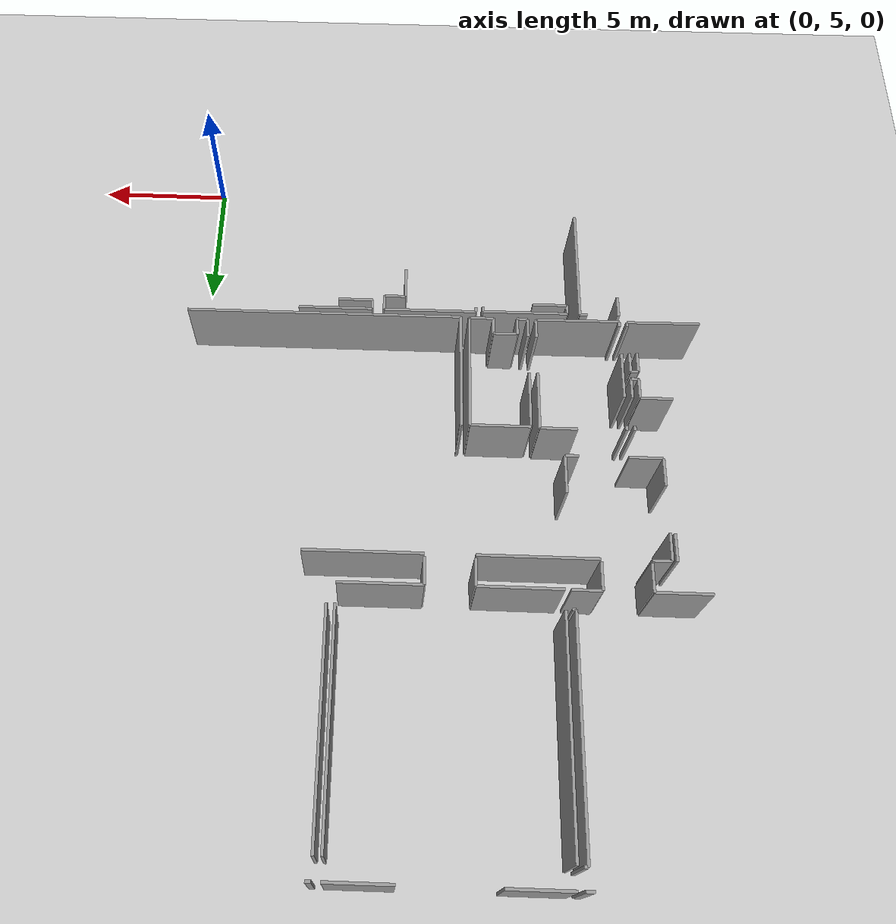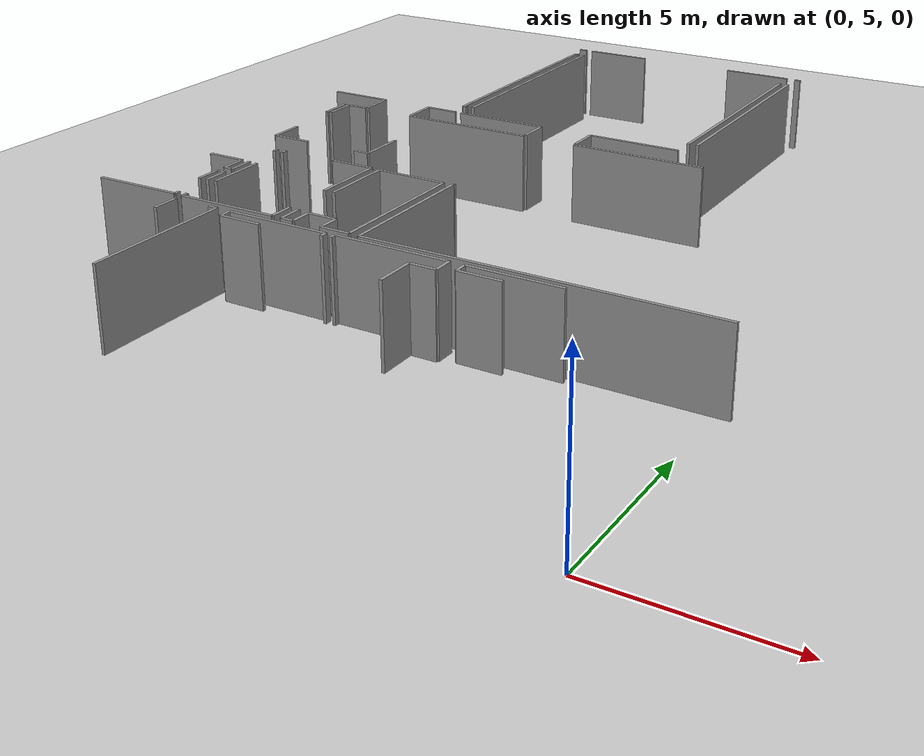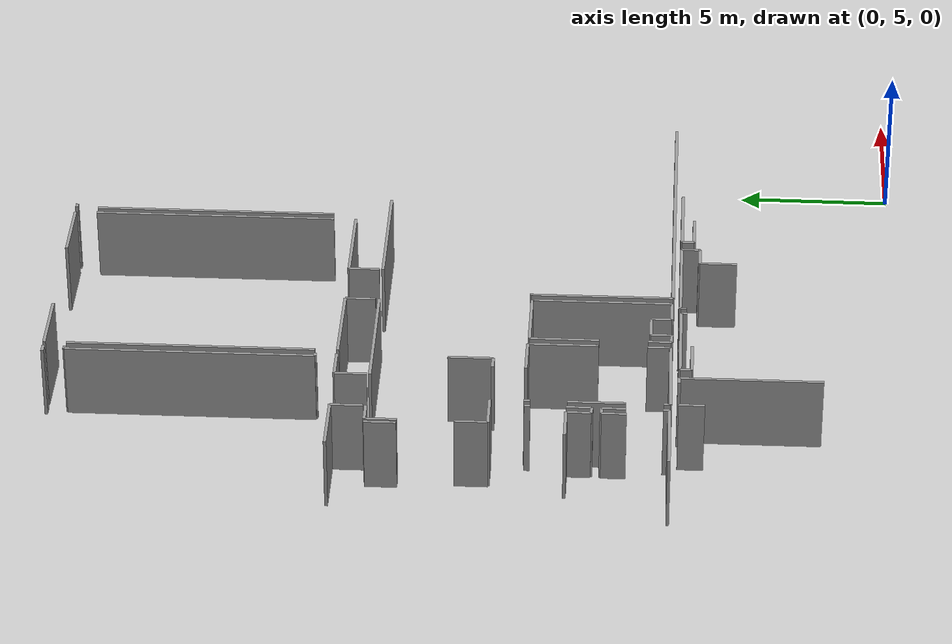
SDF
<sdf version="1.6">
 <world name="default">
  <model name="ground_plane">
   <static>1</static>
   <link name="link">
    <collision name="collision">
     <geometry><plane><normal>0 0 1</normal><size>100 100</size></plane></geometry>
     <surface><friction><ode><mu>100</mu><mu2>50</mu2></ode></friction></surface>
    </collision>
    <visual name="visual">
     <cast_shadows>0</cast_shadows>
     <geometry><plane><normal>0 0 1</normal><size>100 100</size></plane></geometry>
     <material>
      <script><uri>file://media/materials/scripts/gazebo.material</uri><name>Gazebo/Grey</name></script>
     </material>
    </visual>
   </link>
  </model>
  <model name="50052750">
   <static>1</static>
   <link name="Wall_37">
    <collision name="Wall_37_Collision">
     <geometry><box><size>1.02735593965 0.1 2.5</size></box></geometry>
     <pose>0.513677969826 0 1.25 0 0 0</pose>
    </collision>
    <visual name="Wall_37_Visual">
     <pose>0.513677969826 0 1.25 0 0 0</pose>
     <geometry><box><size>1.02735593965 0.1 2.5</size></box></geometry>
     <material>
      <script><uri>file://media/materials/scripts/gazebo.material</uri><name>Gazebo/Grey</name></script>
      <ambient>1 1 1 1</ambient>
     </material>
    </visual>
    <pose>25.2134662499 -10.5972990788 0 0 0 -1.57079632679</pose>
   </link>
   <link name="Wall_82">
    <collision name="Wall_82_Collision">
     <geometry><box><size>1.0690140863 0.1 2.5</size></box></geometry>
     <pose>0.534507043148 0 1.25 0 0 0</pose>
    </collision>
    <visual name="Wall_82_Visual">
     <pose>0.534507043148 0 1.25 0 0 0</pose>
     <geometry><box><size>1.0690140863 0.1 2.5</size></box></geometry>
     <material>
      <script><uri>file://media/materials/scripts/gazebo.material</uri><name>Gazebo/Grey</name></script>
      <ambient>1 1 1 1</ambient>
     </material>
    </visual>
    <pose>25.3809878823 -14.4886526003 0 0 0 1.57079632679</pose>
   </link>
   <link name="Wall_83">
    <collision name="Wall_83_Collision">
     <geometry><box><size>1.02481580876 0.1 2.5</size></box></geometry>
     <pose>0.512407904379 0 1.25 0 0 0</pose>
    </collision>
    <visual name="Wall_83_Visual">
     <pose>0.512407904379 0 1.25 0 0 0</pose>
     <geometry><box><size>1.02481580876 0.1 2.5</size></box></geometry>
     <material>
      <script><uri>file://media/materials/scripts/gazebo.material</uri><name>Gazebo/Grey</name></script>
      <ambient>1 1 1 1</ambient>
     </material>
    </visual>
    <pose>25.3809878823 -11.634815542 0 0 0 1.57079632679</pose>
   </link>
   <link name="Wall_84">
    <collision name="Wall_84_Collision">
     <geometry><box><size>0.698408989015 0.1 2.5</size></box></geometry>
     <pose>0.349204494508 0 1.25 0 0 0</pose>
    </collision>
    <visual name="Wall_84_Visual">
     <pose>0.349204494508 0 1.25 0 0 0</pose>
     <geometry><box><size>0.698408989015 0.1 2.5</size></box></geometry>
     <material>
      <script><uri>file://media/materials/scripts/gazebo.material</uri><name>Gazebo/Grey</name></script>
      <ambient>1 1 1 1</ambient>
     </material>
    </visual>
    <pose>25.3809878823 -10.6099997333 0 0 0 0.0</pose>
   </link>
   <link name="Wall_85">
    <collision name="Wall_85_Collision">
     <geometry><box><size>4.26297467108 0.1 2.5</size></box></geometry>
     <pose>2.13148733554 0 1.25 0 0 0</pose>
    </collision>
    <visual name="Wall_85_Visual">
     <pose>2.13148733554 0 1.25 0 0 0</pose>
     <geometry><box><size>4.26297467108 0.1 2.5</size></box></geometry>
     <material>
      <script><uri>file://media/materials/scripts/gazebo.material</uri><name>Gazebo/Grey</name></script>
      <ambient>1 1 1 1</ambient>
     </material>
    </visual>
    <pose>27.8116391338 -10.6099997333 0 0 0 0.0</pose>
   </link>
   <link name="Wall_86">
    <collision name="Wall_86_Collision">
     <geometry><box><size>4.24201859122 0.1 2.5</size></box></geometry>
     <pose>2.12100929561 0 1.25 0 0 0</pose>
    </collision>
    <visual name="Wall_86_Visual">
     <pose>2.12100929561 0 1.25 0 0 0</pose>
     <geometry><box><size>4.24201859122 0.1 2.5</size></box></geometry>
     <material>
      <script><uri>file://media/materials/scripts/gazebo.material</uri><name>Gazebo/Grey</name></script>
      <ambient>1 1 1 1</ambient>
     </material>
    </visual>
    <pose>33.8218428396 -10.6099997333 0 0 0 0.0</pose>
   </link>
   <link name="Wall_103">
    <collision name="Wall_103_Collision">
     <geometry><box><size>1.45968621763 0.1 2.5</size></box></geometry>
     <pose>0.729843108815 0 1.25 0 0 0</pose>
    </collision>
    <visual name="Wall_103_Visual">
     <pose>0.729843108815 0 1.25 0 0 0</pose>
     <geometry><box><size>1.45968621763 0.1 2.5</size></box></geometry>
     <material>
      <script><uri>file://media/materials/scripts/gazebo.material</uri><name>Gazebo/Grey</name></script>
      <ambient>1 1 1 1</ambient>
     </material>
    </visual>
    <pose>28.8713817423 -13.029982435 0 0 0 -1.57079632679</pose>
   </link>
   <link name="Wall_104">
    <collision name="Wall_104_Collision">
     <geometry><box><size>0.485165000552 0.1 2.5</size></box></geometry>
     <pose>0.242582500276 0 1.25 0 0 0</pose>
    </collision>
    <visual name="Wall_104_Visual">
     <pose>0.242582500276 0 1.25 0 0 0</pose>
     <geometry><box><size>0.485165000552 0.1 2.5</size></box></geometry>
     <material>
      <script><uri>file://media/materials/scripts/gazebo.material</uri><name>Gazebo/Grey</name></script>
      <ambient>1 1 1 1</ambient>
     </material>
    </visual>
    <pose>28.8713817423 -14.4896686526 0 0 0 3.14159265359</pose>
   </link>
   <link name="Wall_105">
    <collision name="Wall_105_Collision">
     <geometry><box><size>1.22751867452 0.1 2.5</size></box></geometry>
     <pose>0.613759337262 0 1.25 0 0 0</pose>
    </collision>
    <visual name="Wall_105_Visual">
     <pose>0.613759337262 0 1.25 0 0 0</pose>
     <geometry><box><size>1.22751867452 0.1 2.5</size></box></geometry>
     <material>
      <script><uri>file://media/materials/scripts/gazebo.material</uri><name>Gazebo/Grey</name></script>
      <ambient>1 1 1 1</ambient>
     </material>
    </visual>
    <pose>26.6085061363 -14.4896686526 0 0 0 3.14076492486</pose>
   </link>
   <link name="Wall_107">
    <collision name="Wall_107_Collision">
     <geometry><box><size>0.290463967608 0.1 2.5</size></box></geometry>
     <pose>0.145231983804 0 1.25 0 0 0</pose>
    </collision>
    <visual name="Wall_107_Visual">
     <pose>0.145231983804 0 1.25 0 0 0</pose>
     <geometry><box><size>0.290463967608 0.1 2.5</size></box></geometry>
     <material>
      <script><uri>file://media/materials/scripts/gazebo.material</uri><name>Gazebo/Grey</name></script>
      <ambient>1 1 1 1</ambient>
     </material>
    </visual>
    <pose>28.576091526 -0.0234962107597 0 0 0 0.0</pose>
   </link>
   <link name="Wall_108">
    <collision name="Wall_108_Collision">
     <geometry><box><size>0.123450361397 0.1 2.5</size></box></geometry>
     <pose>0.0617251806986 0 1.25 0 0 0</pose>
    </collision>
    <visual name="Wall_108_Visual">
     <pose>0.0617251806986 0 1.25 0 0 0</pose>
     <geometry><box><size>0.123450361397 0.1 2.5</size></box></geometry>
     <material>
      <script><uri>file://media/materials/scripts/gazebo.material</uri><name>Gazebo/Grey</name></script>
      <ambient>1 1 1 1</ambient>
     </material>
    </visual>
    <pose>28.8665554936 -0.713268754739 0 0 0 3.14159265359</pose>
   </link>
   <link name="Wall_109">
    <collision name="Wall_109_Collision">
     <geometry><box><size>8.07063087961 0.1 2.5</size></box></geometry>
     <pose>4.0353154398 0 1.25 0 0 0</pose>
    </collision>
    <visual name="Wall_109_Visual">
     <pose>4.0353154398 0 1.25 0 0 0</pose>
     <geometry><box><size>8.07063087961 0.1 2.5</size></box></geometry>
     <material>
      <script><uri>file://media/materials/scripts/gazebo.material</uri><name>Gazebo/Grey</name></script>
      <ambient>1 1 1 1</ambient>
     </material>
    </visual>
    <pose>28.7431051322 -0.713268754739 0 0 0 -1.57079632679</pose>
   </link>
   <link name="Wall_110">
    <collision name="Wall_110_Collision">
     <geometry><box><size>0.123704374486 0.1 2.5</size></box></geometry>
     <pose>0.0618521872432 0 1.25 0 0 0</pose>
    </collision>
    <visual name="Wall_110_Visual">
     <pose>0.0618521872432 0 1.25 0 0 0</pose>
     <geometry><box><size>0.123704374486 0.1 2.5</size></box></geometry>
     <material>
      <script><uri>file://media/materials/scripts/gazebo.material</uri><name>Gazebo/Grey</name></script>
      <ambient>1 1 1 1</ambient>
     </material>
    </visual>
    <pose>28.7431051322 -8.78389963435 0 0 0 0.0</pose>
   </link>
   <link name="Wall_111">
    <collision name="Wall_111_Collision">
     <geometry><box><size>1.05834553655 0.1 2.5</size></box></geometry>
     <pose>0.529172768273 0 1.25 0 0 0</pose>
    </collision>
    <visual name="Wall_111_Visual">
     <pose>0.529172768273 0 1.25 0 0 0</pose>
     <geometry><box><size>1.05834553655 0.1 2.5</size></box></geometry>
     <material>
      <script><uri>file://media/materials/scripts/gazebo.material</uri><name>Gazebo/Grey</name></script>
      <ambient>1 1 1 1</ambient>
     </material>
    </visual>
    <pose>28.8668095067 -9.47722836158 0 0 0 3.14159265359</pose>
   </link>
   <link name="Wall_112">
    <collision name="Wall_112_Collision">
     <geometry><box><size>1.04323175773 0.1 2.5</size></box></geometry>
     <pose>0.521615878866 0 1.25 0 0 0</pose>
    </collision>
    <visual name="Wall_112_Visual">
     <pose>0.521615878866 0 1.25 0 0 0</pose>
     <geometry><box><size>1.04323175773 0.1 2.5</size></box></geometry>
     <material>
      <script><uri>file://media/materials/scripts/gazebo.material</uri><name>Gazebo/Grey</name></script>
      <ambient>1 1 1 1</ambient>
     </material>
    </visual>
    <pose>27.8084639701 -9.47722836158 0 0 0 -1.57079632679</pose>
   </link>
   <link name="Wall_113">
    <collision name="Wall_113_Collision">
     <geometry><box><size>1.04653392789 0.1 2.5</size></box></geometry>
     <pose>0.523266963947 0 1.25 0 0 0</pose>
    </collision>
    <visual name="Wall_113_Visual">
     <pose>0.523266963947 0 1.25 0 0 0</pose>
     <geometry><box><size>1.04653392789 0.1 2.5</size></box></geometry>
     <material>
      <script><uri>file://media/materials/scripts/gazebo.material</uri><name>Gazebo/Grey</name></script>
      <ambient>1 1 1 1</ambient>
     </material>
    </visual>
    <pose>26.0830800611 -10.5204601193 0 0 0 1.57079632679</pose>
   </link>
   <link name="Wall_114">
    <collision name="Wall_114_Collision">
     <geometry><box><size>1.99908301275 0.1 2.5</size></box></geometry>
     <pose>0.999541506374 0 1.25 0 0 0</pose>
    </collision>
    <visual name="Wall_114_Visual">
     <pose>0.999541506374 0 1.25 0 0 0</pose>
     <geometry><box><size>1.99908301275 0.1 2.5</size></box></geometry>
     <material>
      <script><uri>file://media/materials/scripts/gazebo.material</uri><name>Gazebo/Grey</name></script>
      <ambient>1 1 1 1</ambient>
     </material>
    </visual>
    <pose>26.0830800611 -9.47392619142 0 0 0 3.14159265359</pose>
   </link>
   <link name="Wall_117">
    <collision name="Wall_117_Collision">
     <geometry><box><size>8.02516253663 0.1 2.5</size></box></geometry>
     <pose>4.01258126831 0 1.25 0 0 0</pose>
    </collision>
    <visual name="Wall_117_Visual">
     <pose>4.01258126831 0 1.25 0 0 0</pose>
     <geometry><box><size>8.02516253663 0.1 2.5</size></box></geometry>
     <material>
      <script><uri>file://media/materials/scripts/gazebo.material</uri><name>Gazebo/Grey</name></script>
      <ambient>1 1 1 1</ambient>
     </material>
    </visual>
    <pose>29.0827206326 -8.76103845631 0 0 0 1.57079632679</pose>
   </link>
   <link name="Wall_118">
    <collision name="Wall_118_Collision">
     <geometry><box><size>2.20140443837 0.1 2.5</size></box></geometry>
     <pose>1.10070221919 0 1.25 0 0 0</pose>
    </collision>
    <visual name="Wall_118_Visual">
     <pose>1.10070221919 0 1.25 0 0 0</pose>
     <geometry><box><size>2.20140443837 0.1 2.5</size></box></geometry>
     <material>
      <script><uri>file://media/materials/scripts/gazebo.material</uri><name>Gazebo/Grey</name></script>
      <ambient>1 1 1 1</ambient>
     </material>
    </visual>
    <pose>29.0827206326 -0.017653909706 0 0 0 0.0</pose>
   </link>
   <link name="Wall_119">
    <collision name="Wall_119_Collision">
     <geometry><box><size>2.23887136904 0.1 2.5</size></box></geometry>
     <pose>1.11943568452 0 1.25 0 0 0</pose>
    </collision>
    <visual name="Wall_119_Visual">
     <pose>1.11943568452 0 1.25 0 0 0</pose>
     <geometry><box><size>2.23887136904 0.1 2.5</size></box></geometry>
     <material>
      <script><uri>file://media/materials/scripts/gazebo.material</uri><name>Gazebo/Grey</name></script>
      <ambient>1 1 1 1</ambient>
     </material>
    </visual>
    <pose>34.5580997789 -0.017653909706 0 0 0 0.0</pose>
   </link>
   <link name="Wall_120">
    <collision name="Wall_120_Collision">
     <geometry><box><size>8.00585754184 0.1 2.5</size></box></geometry>
     <pose>4.00292877092 0 1.25 0 0 0</pose>
    </collision>
    <visual name="Wall_120_Visual">
     <pose>4.00292877092 0 1.25 0 0 0</pose>
     <geometry><box><size>8.00585754184 0.1 2.5</size></box></geometry>
     <material>
      <script><uri>file://media/materials/scripts/gazebo.material</uri><name>Gazebo/Grey</name></script>
      <ambient>1 1 1 1</ambient>
     </material>
    </visual>
    <pose>36.7969711479 -0.746798482526 0 0 0 -1.57079632679</pose>
   </link>
   <link name="Wall_121">
    <collision name="Wall_121_Collision">
     <geometry><box><size>2.9766523869 0.1 2.5</size></box></geometry>
     <pose>1.48832619345 0 1.25 0 0 0</pose>
    </collision>
    <visual name="Wall_121_Visual">
     <pose>1.48832619345 0 1.25 0 0 0</pose>
     <geometry><box><size>2.9766523869 0.1 2.5</size></box></geometry>
     <material>
      <script><uri>file://media/materials/scripts/gazebo.material</uri><name>Gazebo/Grey</name></script>
      <ambient>1 1 1 1</ambient>
     </material>
    </visual>
    <pose>36.7969711479 -9.48815092442 0 0 0 3.14159265359</pose>
   </link>
   <link name="Wall_122">
    <collision name="Wall_122_Collision">
     <geometry><box><size>1.00716189905 0.1 2.5</size></box></geometry>
     <pose>0.503580949526 0 1.25 0 0 0</pose>
    </collision>
    <visual name="Wall_122_Visual">
     <pose>0.503580949526 0 1.25 0 0 0</pose>
     <geometry><box><size>1.00716189905 0.1 2.5</size></box></geometry>
     <material>
      <script><uri>file://media/materials/scripts/gazebo.material</uri><name>Gazebo/Grey</name></script>
      <ambient>1 1 1 1</ambient>
     </material>
    </visual>
    <pose>33.820318761 -9.48815092442 0 0 0 -1.57079632679</pose>
   </link>
   <link name="Wall_123">
    <collision name="Wall_123_Collision">
     <geometry><box><size>0.996112329668 0.1 2.5</size></box></geometry>
     <pose>0.498056164834 0 1.25 0 0 0</pose>
    </collision>
    <visual name="Wall_123_Visual">
     <pose>0.498056164834 0 1.25 0 0 0</pose>
     <geometry><box><size>0.996112329668 0.1 2.5</size></box></geometry>
     <material>
      <script><uri>file://media/materials/scripts/gazebo.material</uri><name>Gazebo/Grey</name></script>
      <ambient>1 1 1 1</ambient>
     </material>
    </visual>
    <pose>32.0690255169 -10.4953128235 0 0 0 1.57079632679</pose>
   </link>
   <link name="Wall_124">
    <collision name="Wall_124_Collision">
     <geometry><box><size>2.986332983 0.1 2.5</size></box></geometry>
     <pose>1.4931664915 0 1.25 0 0 0</pose>
    </collision>
    <visual name="Wall_124_Visual">
     <pose>1.4931664915 0 1.25 0 0 0</pose>
     <geometry><box><size>2.986332983 0.1 2.5</size></box></geometry>
     <material>
      <script><uri>file://media/materials/scripts/gazebo.material</uri><name>Gazebo/Grey</name></script>
      <ambient>1 1 1 1</ambient>
     </material>
    </visual>
    <pose>32.0690255169 -9.4992004938 0 0 0 3.13725465503</pose>
   </link>
   <link name="Wall_125">
    <collision name="Wall_125_Collision">
     <geometry><box><size>7.98604452087 0.1 2.5</size></box></geometry>
     <pose>3.99302226044 0 1.25 0 0 0</pose>
    </collision>
    <visual name="Wall_125_Visual">
     <pose>3.99302226044 0 1.25 0 0 0</pose>
     <geometry><box><size>7.98604452087 0.1 2.5</size></box></geometry>
     <material>
      <script><uri>file://media/materials/scripts/gazebo.material</uri><name>Gazebo/Grey</name></script>
      <ambient>1 1 1 1</ambient>
     </material>
    </visual>
    <pose>37.0868000828 -8.73017586596 0 0 0 1.57079632679</pose>
   </link>
   <link name="Wall_126">
    <collision name="Wall_126_Collision">
     <geometry><box><size>0.200797347087 0.1 2.5</size></box></geometry>
     <pose>0.100398673544 0 1.25 0 0 0</pose>
    </collision>
    <visual name="Wall_126_Visual">
     <pose>0.100398673544 0 1.25 0 0 0</pose>
     <geometry><box><size>0.200797347087 0.1 2.5</size></box></geometry>
     <material>
      <script><uri>file://media/materials/scripts/gazebo.material</uri><name>Gazebo/Grey</name></script>
      <ambient>1 1 1 1</ambient>
     </material>
    </visual>
    <pose>37.0868000828 -0.0260363416527 0 0 0 0.0</pose>
   </link>
   <link name="Wall_272">
    <collision name="Wall_272_Collision">
     <geometry><box><size>10.3759266715 0.1 2.5</size></box></geometry>
     <pose>5.18796333575 0 1.25 0 0 0</pose>
    </collision>
    <visual name="Wall_272_Visual">
     <pose>5.18796333575 0 1.25 0 0 0</pose>
     <geometry><box><size>10.3759266715 0.1 2.5</size></box></geometry>
     <material>
      <script><uri>file://media/materials/scripts/gazebo.material</uri><name>Gazebo/Grey</name></script>
      <ambient>1 1 1 1</ambient>
     </material>
    </visual>
    <pose>32.5826399834 -20.1884523109 0 0 0 0.0</pose>
   </link>
   <link name="Wall_276">
    <collision name="Wall_276_Collision">
     <geometry><box><size>0.0647733377701 0.1 2.5</size></box></geometry>
     <pose>0.032386668885 0 1.25 0 0 0</pose>
    </collision>
    <visual name="Wall_276_Visual">
     <pose>0.032386668885 0 1.25 0 0 0</pose>
     <geometry><box><size>0.0647733377701 0.1 2.5</size></box></geometry>
     <material>
      <script><uri>file://media/materials/scripts/gazebo.material</uri><name>Gazebo/Grey</name></script>
      <ambient>1 1 1 1</ambient>
     </material>
    </visual>
    <pose>32.6264572413 -15.5669381643 0 0 0 3.14159265359</pose>
   </link>
   <link name="Wall_277">
    <collision name="Wall_277_Collision">
     <geometry><box><size>4.62156165865 0.1 2.5</size></box></geometry>
     <pose>2.31078082933 0 1.25 0 0 0</pose>
    </collision>
    <visual name="Wall_277_Visual">
     <pose>2.31078082933 0 1.25 0 0 0</pose>
     <geometry><box><size>4.62156165865 0.1 2.5</size></box></geometry>
     <material>
      <script><uri>file://media/materials/scripts/gazebo.material</uri><name>Gazebo/Grey</name></script>
      <ambient>1 1 1 1</ambient>
     </material>
    </visual>
    <pose>32.5616839036 -15.5669381643 0 0 0 -1.56626189596</pose>
   </link>
   <link name="Wall_278">
    <collision name="Wall_278_Collision">
     <geometry><box><size>0.210576851025 0.1 2.5</size></box></geometry>
     <pose>0.105288425513 0 1.25 0 0 0</pose>
    </collision>
    <visual name="Wall_278_Visual">
     <pose>0.105288425513 0 1.25 0 0 0</pose>
     <geometry><box><size>0.210576851025 0.1 2.5</size></box></geometry>
     <material>
      <script><uri>file://media/materials/scripts/gazebo.material</uri><name>Gazebo/Grey</name></script>
      <ambient>1 1 1 1</ambient>
     </material>
    </visual>
    <pose>26.6010127502 -20.1817209641 0 0 0 1.57079632679</pose>
   </link>
   <link name="Wall_279">
    <collision name="Wall_279_Collision">
     <geometry><box><size>1.84451604791 0.1 2.5</size></box></geometry>
     <pose>0.922258023956 0 1.25 0 0 0</pose>
    </collision>
    <visual name="Wall_279_Visual">
     <pose>0.922258023956 0 1.25 0 0 0</pose>
     <geometry><box><size>1.84451604791 0.1 2.5</size></box></geometry>
     <material>
      <script><uri>file://media/materials/scripts/gazebo.material</uri><name>Gazebo/Grey</name></script>
      <ambient>1 1 1 1</ambient>
     </material>
    </visual>
    <pose>26.6010127502 -18.7803307504 0 0 0 1.57079632679</pose>
   </link>
   <link name="Wall_280">
    <collision name="Wall_280_Collision">
     <geometry><box><size>0.201178366721 0.1 2.5</size></box></geometry>
     <pose>0.100589183361 0 1.25 0 0 0</pose>
    </collision>
    <visual name="Wall_280_Visual">
     <pose>0.100589183361 0 1.25 0 0 0</pose>
     <geometry><box><size>0.201178366721 0.1 2.5</size></box></geometry>
     <material>
      <script><uri>file://media/materials/scripts/gazebo.material</uri><name>Gazebo/Grey</name></script>
      <ambient>1 1 1 1</ambient>
     </material>
    </visual>
    <pose>26.6010127502 -15.7598611056 0 0 0 1.57079632679</pose>
   </link>
   <link name="Wall_281">
    <collision name="Wall_281_Collision">
     <geometry><box><size>1.36951157093 0.1 2.5</size></box></geometry>
     <pose>0.684755785466 0 1.25 0 0 0</pose>
    </collision>
    <visual name="Wall_281_Visual">
     <pose>0.684755785466 0 1.25 0 0 0</pose>
     <geometry><box><size>1.36951157093 0.1 2.5</size></box></geometry>
     <material>
      <script><uri>file://media/materials/scripts/gazebo.material</uri><name>Gazebo/Grey</name></script>
      <ambient>1 1 1 1</ambient>
     </material>
    </visual>
    <pose>28.3695788844 -15.5586827389 0 0 0 0.0</pose>
   </link>
   <link name="Wall_282">
    <collision name="Wall_282_Collision">
     <geometry><box><size>2.2848477382 0.1 2.5</size></box></geometry>
     <pose>1.1424238691 0 1.25 0 0 0</pose>
    </collision>
    <visual name="Wall_282_Visual">
     <pose>1.1424238691 0 1.25 0 0 0</pose>
     <geometry><box><size>2.2848477382 0.1 2.5</size></box></geometry>
     <material>
      <script><uri>file://media/materials/scripts/gazebo.material</uri><name>Gazebo/Grey</name></script>
      <ambient>1 1 1 1</ambient>
     </material>
    </visual>
    <pose>29.7390904553 -15.5586827389 0 0 0 -1.57079632679</pose>
   </link>
   <link name="Wall_283">
    <collision name="Wall_283_Collision">
     <geometry><box><size>0.75784805191 0.1 2.5</size></box></geometry>
     <pose>0.378924025955 0 1.25 0 0 0</pose>
    </collision>
    <visual name="Wall_283_Visual">
     <pose>0.378924025955 0 1.25 0 0 0</pose>
     <geometry><box><size>0.75784805191 0.1 2.5</size></box></geometry>
     <material>
      <script><uri>file://media/materials/scripts/gazebo.material</uri><name>Gazebo/Grey</name></script>
      <ambient>1 1 1 1</ambient>
     </material>
    </visual>
    <pose>29.7390904553 -19.399106636 0 0 0 -1.57079632679</pose>
   </link>
   <link name="Wall_284">
    <collision name="Wall_284_Collision">
     <geometry><box><size>3.13817543359 0.1 2.5</size></box></geometry>
     <pose>1.56908771679 0 1.25 0 0 0</pose>
    </collision>
    <visual name="Wall_284_Visual">
     <pose>1.56908771679 0 1.25 0 0 0</pose>
     <geometry><box><size>3.13817543359 0.1 2.5</size></box></geometry>
     <material>
      <script><uri>file://media/materials/scripts/gazebo.material</uri><name>Gazebo/Grey</name></script>
      <ambient>1 1 1 1</ambient>
     </material>
    </visual>
    <pose>29.7390904553 -20.1569546879 0 0 0 -3.13370063677</pose>
   </link>
   <link name="Wall_285">
    <collision name="Wall_285_Collision">
     <geometry><box><size>0.749084600329 0.1 2.5</size></box></geometry>
     <pose>0.374542300165 0 1.25 0 0 0</pose>
    </collision>
    <visual name="Wall_285_Visual">
     <pose>0.374542300165 0 1.25 0 0 0</pose>
     <geometry><box><size>0.749084600329 0.1 2.5</size></box></geometry>
     <material>
      <script><uri>file://media/materials/scripts/gazebo.material</uri><name>Gazebo/Grey</name></script>
      <ambient>1 1 1 1</ambient>
     </material>
    </visual>
    <pose>30.0526696141 -20.1654641264 0 0 0 1.57079632679</pose>
   </link>
   <link name="Wall_286">
    <collision name="Wall_286_Collision">
     <geometry><box><size>2.24153850648 0.1 2.5</size></box></geometry>
     <pose>1.12076925324 0 1.25 0 0 0</pose>
    </collision>
    <visual name="Wall_286_Visual">
     <pose>1.12076925324 0 1.25 0 0 0</pose>
     <geometry><box><size>2.24153850648 0.1 2.5</size></box></geometry>
     <material>
      <script><uri>file://media/materials/scripts/gazebo.material</uri><name>Gazebo/Grey</name></script>
      <ambient>1 1 1 1</ambient>
     </material>
    </visual>
    <pose>30.0526696141 -17.8399742939 0 0 0 1.57079632679</pose>
   </link>
   <link name="Wall_287">
    <collision name="Wall_287_Collision">
     <geometry><box><size>2.20229348418 0.1 2.5</size></box></geometry>
     <pose>1.10114674209 0 1.25 0 0 0</pose>
    </collision>
    <visual name="Wall_287_Visual">
     <pose>1.10114674209 0 1.25 0 0 0</pose>
     <geometry><box><size>2.20229348418 0.1 2.5</size></box></geometry>
     <material>
      <script><uri>file://media/materials/scripts/gazebo.material</uri><name>Gazebo/Grey</name></script>
      <ambient>1 1 1 1</ambient>
     </material>
    </visual>
    <pose>30.0526696141 -15.5984357874 0 0 0 0.0</pose>
   </link>
   <link name="Wall_288">
    <collision name="Wall_288_Collision">
     <geometry><box><size>4.56702833897 0.1 2.5</size></box></geometry>
     <pose>2.28351416949 0 1.25 0 0 0</pose>
    </collision>
    <visual name="Wall_288_Visual">
     <pose>2.28351416949 0 1.25 0 0 0</pose>
     <geometry><box><size>4.56702833897 0.1 2.5</size></box></geometry>
     <material>
      <script><uri>file://media/materials/scripts/gazebo.material</uri><name>Gazebo/Grey</name></script>
      <ambient>1 1 1 1</ambient>
     </material>
    </visual>
    <pose>32.2549630982 -15.5984357874 0 0 0 -1.57079632679</pose>
   </link>
   <link name="Wall_289">
    <collision name="Wall_289_Collision">
     <geometry><box><size>0.905810676424 0.1 2.5</size></box></geometry>
     <pose>0.452905338212 0 1.25 0 0 0</pose>
    </collision>
    <visual name="Wall_289_Visual">
     <pose>0.452905338212 0 1.25 0 0 0</pose>
     <geometry><box><size>0.905810676424 0.1 2.5</size></box></geometry>
     <material>
      <script><uri>file://media/materials/scripts/gazebo.material</uri><name>Gazebo/Grey</name></script>
      <ambient>1 1 1 1</ambient>
     </material>
    </visual>
    <pose>32.2549630982 -20.1654641264 0 0 0 3.14159265359</pose>
   </link>
   <link name="Wall_290">
    <collision name="Wall_290_Collision">
     <geometry><box><size>0.662720149969 0.1 2.5</size></box></geometry>
     <pose>0.331360074985 0 1.25 0 0 0</pose>
    </collision>
    <visual name="Wall_290_Visual">
     <pose>0.331360074985 0 1.25 0 0 0</pose>
     <geometry><box><size>0.662720149969 0.1 2.5</size></box></geometry>
     <material>
      <script><uri>file://media/materials/scripts/gazebo.material</uri><name>Gazebo/Grey</name></script>
      <ambient>1 1 1 1</ambient>
     </material>
    </visual>
    <pose>31.3491524218 -20.1654641264 0 0 0 1.57079632679</pose>
   </link>
   <link name="Wall_291">
    <collision name="Wall_291_Collision">
     <geometry><box><size>0.902762519353 0.1 2.5</size></box></geometry>
     <pose>0.451381259676 0 1.25 0 0 0</pose>
    </collision>
    <visual name="Wall_291_Visual">
     <pose>0.451381259676 0 1.25 0 0 0</pose>
     <geometry><box><size>0.902762519353 0.1 2.5</size></box></geometry>
     <material>
      <script><uri>file://media/materials/scripts/gazebo.material</uri><name>Gazebo/Grey</name></script>
      <ambient>1 1 1 1</ambient>
     </material>
    </visual>
    <pose>31.3491524218 -19.5027439764 0 0 0 3.14159265359</pose>
   </link>
   <link name="Wall_292">
    <collision name="Wall_292_Collision">
     <geometry><box><size>0.672245640818 0.1 2.5</size></box></geometry>
     <pose>0.336122820409 0 1.25 0 0 0</pose>
    </collision>
    <visual name="Wall_292_Visual">
     <pose>0.336122820409 0 1.25 0 0 0</pose>
     <geometry><box><size>0.672245640818 0.1 2.5</size></box></geometry>
     <material>
      <script><uri>file://media/materials/scripts/gazebo.material</uri><name>Gazebo/Grey</name></script>
      <ambient>1 1 1 1</ambient>
     </material>
    </visual>
    <pose>30.4463899025 -19.5027439764 0 0 0 -1.57079632679</pose>
   </link>
   <link name="Wall_293">
    <collision name="Wall_293_Collision">
     <geometry><box><size>0.393835499262 0.1 2.5</size></box></geometry>
     <pose>0.196917749631 0 1.25 0 0 0</pose>
    </collision>
    <visual name="Wall_293_Visual">
     <pose>0.196917749631 0 1.25 0 0 0</pose>
     <geometry><box><size>0.393835499262 0.1 2.5</size></box></geometry>
     <material>
      <script><uri>file://media/materials/scripts/gazebo.material</uri><name>Gazebo/Grey</name></script>
      <ambient>1 1 1 1</ambient>
     </material>
    </visual>
    <pose>30.4463899025 -20.1749896172 0 0 0 3.11740382393</pose>
   </link>
   <link name="Wall_300">
    <collision name="Wall_300_Collision">
     <geometry><box><size>0.186572614087 0.1 2.5</size></box></geometry>
     <pose>0.0932863070434 0 1.25 0 0 0</pose>
    </collision>
    <visual name="Wall_300_Visual">
     <pose>0.0932863070434 0 1.25 0 0 0</pose>
     <geometry><box><size>0.186572614087 0.1 2.5</size></box></geometry>
     <material>
      <script><uri>file://media/materials/scripts/gazebo.material</uri><name>Gazebo/Grey</name></script>
      <ambient>1 1 1 1</ambient>
     </material>
    </visual>
    <pose>26.3124538807 -15.5830679955 0 0 0 -1.57079632679</pose>
   </link>
   <link name="Wall_301">
    <collision name="Wall_301_Collision">
     <geometry><box><size>0.79747409384 0.1 2.5</size></box></geometry>
     <pose>0.39873704692 0 1.25 0 0 0</pose>
    </collision>
    <visual name="Wall_301_Visual">
     <pose>0.39873704692 0 1.25 0 0 0</pose>
     <geometry><box><size>0.79747409384 0.1 2.5</size></box></geometry>
     <material>
      <script><uri>file://media/materials/scripts/gazebo.material</uri><name>Gazebo/Grey</name></script>
      <ambient>1 1 1 1</ambient>
     </material>
    </visual>
    <pose>26.3124538807 -16.9105404001 0 0 0 -1.57079632679</pose>
   </link>
   <link name="Wall_302">
    <collision name="Wall_302_Collision">
     <geometry><box><size>0.277509300054 0.1 2.5</size></box></geometry>
     <pose>0.138754650027 0 1.25 0 0 0</pose>
    </collision>
    <visual name="Wall_302_Visual">
     <pose>0.138754650027 0 1.25 0 0 0</pose>
     <geometry><box><size>0.277509300054 0.1 2.5</size></box></geometry>
     <material>
      <script><uri>file://media/materials/scripts/gazebo.material</uri><name>Gazebo/Grey</name></script>
      <ambient>1 1 1 1</ambient>
     </material>
    </visual>
    <pose>26.3124538807 -17.708014494 0 0 0 3.14159265359</pose>
   </link>
   <link name="Wall_303">
    <collision name="Wall_303_Collision">
     <geometry><box><size>0.796204028394 0.1 2.5</size></box></geometry>
     <pose>0.398102014197 0 1.25 0 0 0</pose>
    </collision>
    <visual name="Wall_303_Visual">
     <pose>0.398102014197 0 1.25 0 0 0</pose>
     <geometry><box><size>0.796204028394 0.1 2.5</size></box></geometry>
     <material>
      <script><uri>file://media/materials/scripts/gazebo.material</uri><name>Gazebo/Grey</name></script>
      <ambient>1 1 1 1</ambient>
     </material>
    </visual>
    <pose>26.0349445807 -17.708014494 0 0 0 1.57079632679</pose>
   </link>
   <link name="Wall_304">
    <collision name="Wall_304_Collision">
     <geometry><box><size>1.1970366833 0.1 2.5</size></box></geometry>
     <pose>0.59851834165 0 1.25 0 0 0</pose>
    </collision>
    <visual name="Wall_304_Visual">
     <pose>0.59851834165 0 1.25 0 0 0</pose>
     <geometry><box><size>1.1970366833 0.1 2.5</size></box></geometry>
     <material>
      <script><uri>file://media/materials/scripts/gazebo.material</uri><name>Gazebo/Grey</name></script>
      <ambient>1 1 1 1</ambient>
     </material>
    </visual>
    <pose>26.0349445807 -16.9118104656 0 0 0 3.14159265359</pose>
   </link>
   <link name="Wall_315">
    <collision name="Wall_315_Collision">
     <geometry><box><size>0.793028864777 0.1 2.5</size></box></geometry>
     <pose>0.396514432389 0 1.25 0 0 0</pose>
    </collision>
    <visual name="Wall_315_Visual">
     <pose>0.396514432389 0 1.25 0 0 0</pose>
     <geometry><box><size>0.793028864777 0.1 2.5</size></box></geometry>
     <material>
      <script><uri>file://media/materials/scripts/gazebo.material</uri><name>Gazebo/Grey</name></script>
      <ambient>1 1 1 1</ambient>
     </material>
    </visual>
    <pose>26.023132972 -18.8156385699 0 0 0 1.57079632679</pose>
   </link>
   <link name="Wall_316">
    <collision name="Wall_316_Collision">
     <geometry><box><size>0.278144332777 0.1 2.5</size></box></geometry>
     <pose>0.139072166389 0 1.25 0 0 0</pose>
    </collision>
    <visual name="Wall_316_Visual">
     <pose>0.139072166389 0 1.25 0 0 0</pose>
     <geometry><box><size>0.278144332777 0.1 2.5</size></box></geometry>
     <material>
      <script><uri>file://media/materials/scripts/gazebo.material</uri><name>Gazebo/Grey</name></script>
      <ambient>1 1 1 1</ambient>
     </material>
    </visual>
    <pose>26.023132972 -18.0226097051 0 0 0 0.0</pose>
   </link>
   <link name="Wall_317">
    <collision name="Wall_317_Collision">
     <geometry><box><size>0.772326798 0.1 2.5</size></box></geometry>
     <pose>0.386163399 0 1.25 0 0 0</pose>
    </collision>
    <visual name="Wall_317_Visual">
     <pose>0.386163399 0 1.25 0 0 0</pose>
     <geometry><box><size>0.772326798 0.1 2.5</size></box></geometry>
     <material>
      <script><uri>file://media/materials/scripts/gazebo.material</uri><name>Gazebo/Grey</name></script>
      <ambient>1 1 1 1</ambient>
     </material>
    </visual>
    <pose>26.3012773048 -18.0226097051 0 0 0 -1.57079632679</pose>
   </link>
   <link name="Wall_318">
    <collision name="Wall_318_Collision">
     <geometry><box><size>0.187842679533 0.1 2.5</size></box></geometry>
     <pose>0.0939213397666 0 1.25 0 0 0</pose>
    </collision>
    <visual name="Wall_318_Visual">
     <pose>0.0939213397666 0 1.25 0 0 0</pose>
     <geometry><box><size>0.187842679533 0.1 2.5</size></box></geometry>
     <material>
      <script><uri>file://media/materials/scripts/gazebo.material</uri><name>Gazebo/Grey</name></script>
      <ambient>1 1 1 1</ambient>
     </material>
    </visual>
    <pose>26.3012773048 -19.9647937858 0 0 0 -1.57079632679</pose>
   </link>
   <link name="Wall_319">
    <collision name="Wall_319_Collision">
     <geometry><box><size>2.72644924546 0.1 2.5</size></box></geometry>
     <pose>1.36322462273 0 1.25 0 0 0</pose>
    </collision>
    <visual name="Wall_319_Visual">
     <pose>1.36322462273 0 1.25 0 0 0</pose>
     <geometry><box><size>2.72644924546 0.1 2.5</size></box></geometry>
     <material>
      <script><uri>file://media/materials/scripts/gazebo.material</uri><name>Gazebo/Grey</name></script>
      <ambient>1 1 1 1</ambient>
     </material>
    </visual>
    <pose>26.3012773048 -20.1526364654 0 0 0 -3.13194979586</pose>
   </link>
   <link name="Wall_341">
    <collision name="Wall_341_Collision">
     <geometry><box><size>0.195717085301 0.1 2.5</size></box></geometry>
     <pose>0.0978585426507 0 1.25 0 0 0</pose>
    </collision>
    <visual name="Wall_341_Visual">
     <pose>0.0978585426507 0 1.25 0 0 0</pose>
     <geometry><box><size>0.195717085301 0.1 2.5</size></box></geometry>
     <material>
      <script><uri>file://media/materials/scripts/gazebo.material</uri><name>Gazebo/Grey</name></script>
      <ambient>1 1 1 1</ambient>
     </material>
    </visual>
    <pose>32.0086974082 -20.6372934397 0 0 0 1.57079632679</pose>
   </link>
   <link name="Wall_342">
    <collision name="Wall_342_Collision">
     <geometry><box><size>3.4855676113 0.1 2.5</size></box></geometry>
     <pose>1.74278380565 0 1.25 0 0 0</pose>
    </collision>
    <visual name="Wall_342_Visual">
     <pose>1.74278380565 0 1.25 0 0 0</pose>
     <geometry><box><size>3.4855676113 0.1 2.5</size></box></geometry>
     <material>
      <script><uri>file://media/materials/scripts/gazebo.material</uri><name>Gazebo/Grey</name></script>
      <ambient>1 1 1 1</ambient>
     </material>
    </visual>
    <pose>32.0086974082 -20.4415763544 0 0 0 0.0</pose>
   </link>
   <link name="Wall_343">
    <collision name="Wall_343_Collision">
     <geometry><box><size>0.606202237601 0.1 2.5</size></box></geometry>
     <pose>0.303101118801 0 1.25 0 0 0</pose>
    </collision>
    <visual name="Wall_343_Visual">
     <pose>0.303101118801 0 1.25 0 0 0</pose>
     <geometry><box><size>0.606202237601 0.1 2.5</size></box></geometry>
     <material>
      <script><uri>file://media/materials/scripts/gazebo.material</uri><name>Gazebo/Grey</name></script>
      <ambient>1 1 1 1</ambient>
     </material>
    </visual>
    <pose>35.4942650195 -20.4415763544 0 0 0 -1.57079632679</pose>
   </link>
   <link name="Wall_344">
    <collision name="Wall_344_Collision">
     <geometry><box><size>0.801919322903 0.1 2.5</size></box></geometry>
     <pose>0.400959661451 0 1.25 0 0 0</pose>
    </collision>
    <visual name="Wall_344_Visual">
     <pose>0.400959661451 0 1.25 0 0 0</pose>
     <geometry><box><size>0.801919322903 0.1 2.5</size></box></geometry>
     <material>
      <script><uri>file://media/materials/scripts/gazebo.material</uri><name>Gazebo/Grey</name></script>
      <ambient>1 1 1 1</ambient>
     </material>
    </visual>
    <pose>35.4942650195 -21.047778592 0 0 0 3.14159265359</pose>
   </link>
   <link name="Wall_345">
    <collision name="Wall_345_Collision">
     <geometry><box><size>1.22497812312 0.1 2.5</size></box></geometry>
     <pose>0.612489061561 0 1.25 0 0 0</pose>
    </collision>
    <visual name="Wall_345_Visual">
     <pose>0.612489061561 0 1.25 0 0 0</pose>
     <geometry><box><size>1.22497812312 0.1 2.5</size></box></geometry>
     <material>
      <script><uri>file://media/materials/scripts/gazebo.material</uri><name>Gazebo/Grey</name></script>
      <ambient>1 1 1 1</ambient>
     </material>
    </visual>
    <pose>34.6923456966 -21.047778592 0 0 0 -1.57079632679</pose>
   </link>
   <link name="Wall_364">
    <collision name="Wall_364_Collision">
     <geometry><box><size>0.833162932886 0.1 2.5</size></box></geometry>
     <pose>0.416581466443 0 1.25 0 0 0</pose>
    </collision>
    <visual name="Wall_364_Visual">
     <pose>0.416581466443 0 1.25 0 0 0</pose>
     <geometry><box><size>0.833162932886 0.1 2.5</size></box></geometry>
     <material>
      <script><uri>file://media/materials/scripts/gazebo.material</uri><name>Gazebo/Grey</name></script>
      <ambient>1 1 1 1</ambient>
     </material>
    </visual>
    <pose>26.599107652 -20.4356070468 0 0 0 -1.57079632679</pose>
   </link>
   <link name="Wall_367">
    <collision name="Wall_367_Collision">
     <geometry><box><size>0.278525352411 0.1 2.5</size></box></geometry>
     <pose>0.139262676206 0 1.25 0 0 0</pose>
    </collision>
    <visual name="Wall_367_Visual">
     <pose>0.139262676206 0 1.25 0 0 0</pose>
     <geometry><box><size>0.278525352411 0.1 2.5</size></box></geometry>
     <material>
      <script><uri>file://media/materials/scripts/gazebo.material</uri><name>Gazebo/Grey</name></script>
      <ambient>1 1 1 1</ambient>
     </material>
    </visual>
    <pose>27.7862378248 -20.4438624722 0 0 0 0.0</pose>
   </link>
   <link name="Wall_368">
    <collision name="Wall_368_Collision">
     <geometry><box><size>4.58861945156 0.1 2.5</size></box></geometry>
     <pose>2.29430972578 0 1.25 0 0 0</pose>
    </collision>
    <visual name="Wall_368_Visual">
     <pose>2.29430972578 0 1.25 0 0 0</pose>
     <geometry><box><size>4.58861945156 0.1 2.5</size></box></geometry>
     <material>
      <script><uri>file://media/materials/scripts/gazebo.material</uri><name>Gazebo/Grey</name></script>
      <ambient>1 1 1 1</ambient>
     </material>
    </visual>
    <pose>28.0647631772 -20.4438624722 0 0 0 -1.57079632679</pose>
   </link>
   <link name="Wall_377">
    <collision name="Wall_377_Collision">
     <geometry><box><size>1.30613530515 0.1 2.5</size></box></geometry>
     <pose>0.653067652576 0 1.25 0 0 0</pose>
    </collision>
    <visual name="Wall_377_Visual">
     <pose>0.653067652576 0 1.25 0 0 0</pose>
     <geometry><box><size>1.30613530515 0.1 2.5</size></box></geometry>
     <material>
      <script><uri>file://media/materials/scripts/gazebo.material</uri><name>Gazebo/Grey</name></script>
      <ambient>1 1 1 1</ambient>
     </material>
    </visual>
    <pose>37.2553377676 -20.847235258 0 0 0 3.14159265359</pose>
   </link>
   <link name="Wall_378">
    <collision name="Wall_378_Collision">
     <geometry><box><size>0.393720288406 0.1 2.5</size></box></geometry>
     <pose>0.196860144203 0 1.25 0 0 0</pose>
    </collision>
    <visual name="Wall_378_Visual">
     <pose>0.196860144203 0 1.25 0 0 0</pose>
     <geometry><box><size>0.393720288406 0.1 2.5</size></box></geometry>
     <material>
      <script><uri>file://media/materials/scripts/gazebo.material</uri><name>Gazebo/Grey</name></script>
      <ambient>1 1 1 1</ambient>
     </material>
    </visual>
    <pose>35.9492024624 -20.847235258 0 0 0 1.57079632679</pose>
   </link>
   <link name="Wall_379">
    <collision name="Wall_379_Collision">
     <geometry><box><size>2.7963030935 0.1 2.5</size></box></geometry>
     <pose>1.39815154675 0 1.25 0 0 0</pose>
    </collision>
    <visual name="Wall_379_Visual">
     <pose>1.39815154675 0 1.25 0 0 0</pose>
     <geometry><box><size>2.7963030935 0.1 2.5</size></box></geometry>
     <material>
      <script><uri>file://media/materials/scripts/gazebo.material</uri><name>Gazebo/Grey</name></script>
      <ambient>1 1 1 1</ambient>
     </material>
    </visual>
    <pose>35.9492024624 -20.4535149696 0 0 0 0.0</pose>
   </link>
   <link name="Wall_403">
    <collision name="Wall_403_Collision">
     <geometry><box><size>1.30130905646 0.1 2.5</size></box></geometry>
     <pose>0.650654528228 0 1.25 0 0 0</pose>
    </collision>
    <visual name="Wall_403_Visual">
     <pose>0.650654528228 0 1.25 0 0 0</pose>
     <geometry><box><size>1.30130905646 0.1 2.5</size></box></geometry>
     <material>
      <script><uri>file://media/materials/scripts/gazebo.material</uri><name>Gazebo/Grey</name></script>
      <ambient>1 1 1 1</ambient>
     </material>
    </visual>
    <pose>29.8400606583 -20.8377097672 0 0 0 3.14159265359</pose>
   </link>
   <link name="Wall_404">
    <collision name="Wall_404_Collision">
     <geometry><box><size>0.373272234718 0.1 2.5</size></box></geometry>
     <pose>0.186636117359 0 1.25 0 0 0</pose>
    </collision>
    <visual name="Wall_404_Visual">
     <pose>0.186636117359 0 1.25 0 0 0</pose>
     <geometry><box><size>0.373272234718 0.1 2.5</size></box></geometry>
     <material>
      <script><uri>file://media/materials/scripts/gazebo.material</uri><name>Gazebo/Grey</name></script>
      <ambient>1 1 1 1</ambient>
     </material>
    </visual>
    <pose>28.5387516019 -20.8377097672 0 0 0 1.57079632679</pose>
   </link>
   <link name="Wall_405">
    <collision name="Wall_405_Collision">
     <geometry><box><size>3.19561166987 0.1 2.5</size></box></geometry>
     <pose>1.59780583493 0 1.25 0 0 0</pose>
    </collision>
    <visual name="Wall_405_Visual">
     <pose>1.59780583493 0 1.25 0 0 0</pose>
     <geometry><box><size>3.19561166987 0.1 2.5</size></box></geometry>
     <material>
      <script><uri>file://media/materials/scripts/gazebo.material</uri><name>Gazebo/Grey</name></script>
      <ambient>1 1 1 1</ambient>
     </material>
    </visual>
    <pose>28.5387516019 -20.4644375325 0 0 0 0.0</pose>
   </link>
   <link name="Wall_406">
    <collision name="Wall_406_Collision">
     <geometry><box><size>0.203083464891 0.1 2.5</size></box></geometry>
     <pose>0.101541732445 0 1.25 0 0 0</pose>
    </collision>
    <visual name="Wall_406_Visual">
     <pose>0.101541732445 0 1.25 0 0 0</pose>
     <geometry><box><size>0.203083464891 0.1 2.5</size></box></geometry>
     <material>
      <script><uri>file://media/materials/scripts/gazebo.material</uri><name>Gazebo/Grey</name></script>
      <ambient>1 1 1 1</ambient>
     </material>
    </visual>
    <pose>31.7343632717 -20.4644375325 0 0 0 -1.57079632679</pose>
   </link>
   <pose>-42.55 32.5101749388 0 0 0 0</pose>
  </model>
 </world>
</sdf>
